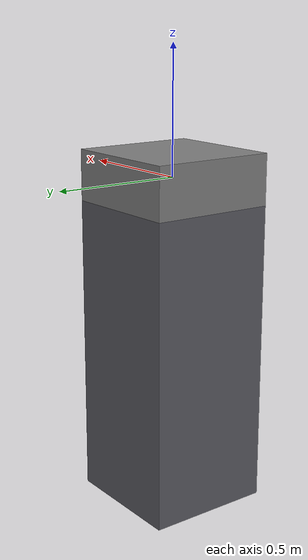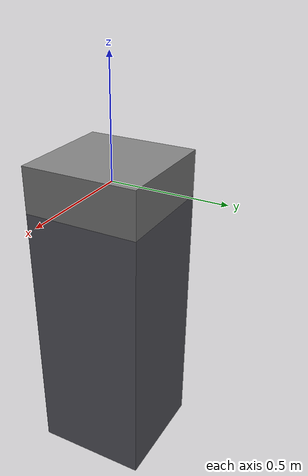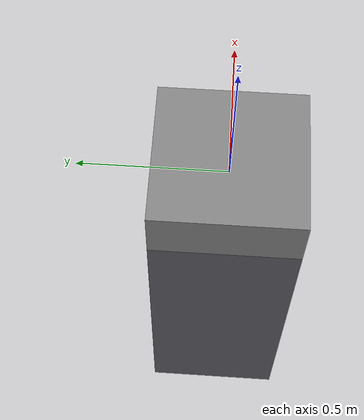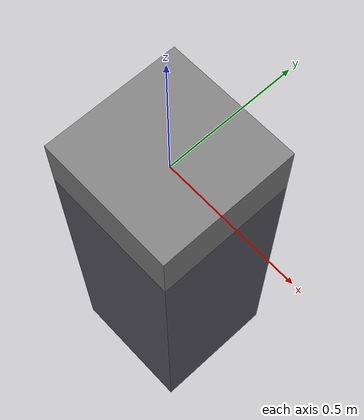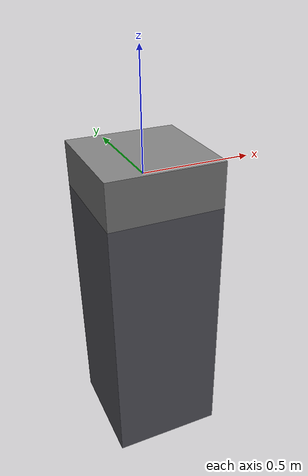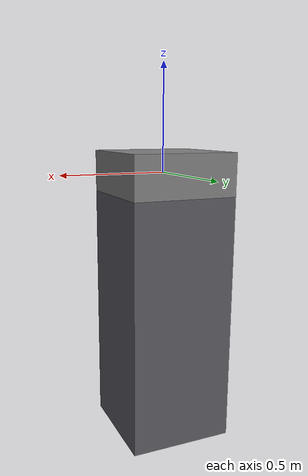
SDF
<?xml version="1.0"?>
<sdf version="1.6">
  <model name="sensor_rig">
    <static>true</static>
    <link name="body">
      <pose>0 0 -0.7 0 0 0</pose>
      <visual name="v"><geometry><box><size>0.5 0.5 1.2</size></box></geometry><material><ambient>0.35 0.35 0.38 1</ambient><diffuse>0.35 0.35 0.38 1</diffuse></material></visual>
      <collision name="c"><geometry><box><size>0.5 0.5 1.2</size></box></geometry></collision>
    </link>
    <link name="base">
      <pose>0 0 0 0 0 0</pose>
      <visual name="v"><geometry><box><size>0.5 0.5 0.2</size></box></geometry><material><ambient>0.5 0.5 0.5 1</ambient><diffuse>0.5 0.5 0.5 1</diffuse></material></visual>
      <collision name="c"><geometry><box><size>0.5 0.5 0.2</size></box></geometry></collision>
    </link>
    <link name="lidar">
      <pose>0 0 0.4 0 0 0</pose>
      <sensor name="lidar" type="ray">
        <always_on>true</always_on><update_rate>10</update_rate>
        <ray>
          <scan><horizontal><samples>360</samples><min_angle>-3.1416</min_angle><max_angle>3.1416</max_angle></horizontal><vertical><samples>16</samples><min_angle>-0.26</min_angle><max_angle>0.26</max_angle></vertical></scan>
          <range><min>0.05</min><max>15.0</max><resolution>0.01</resolution></range>
        </ray>
        <plugin name="gazebo_ros_ray_sensor" filename="libgazebo_ros_ray_sensor.so">
          <ros><remapping>~/out:=/livox/lidar/pointcloud</remapping></ros>
          <output_type>sensor_msgs/PointCloud2</output_type>
          <frame_name>livox_frame</frame_name>
        </plugin>
      </sensor>
    </link>
    <link name="cam_front">
      <pose>0 0 0.4 0 0 0</pose>
      <sensor name="cam_front_s" type="camera">
        <always_on>true</always_on><update_rate>30</update_rate>
        <camera><horizontal_fov>1.1</horizontal_fov>
          <image><width>640</width><height>384</height><format>R8G8B8</format></image>
          <clip><near>0.05</near><far>30.0</far></clip></camera>
        <plugin name="gazebo_ros_camera_cam_front" filename="libgazebo_ros_camera.so">
          <ros><remapping>~/image_raw:=/camera_front/image_raw</remapping></ros>
        </plugin>
      </sensor>
    </link>
    <link name="cam_rear">
      <pose>0 0 0.4 0 0 3.1416</pose>
      <sensor name="cam_rear_s" type="camera">
        <always_on>true</always_on><update_rate>30</update_rate>
        <camera><horizontal_fov>1.1</horizontal_fov>
          <image><width>640</width><height>384</height><format>R8G8B8</format></image>
          <clip><near>0.05</near><far>30.0</far></clip></camera>
        <plugin name="gazebo_ros_camera_cam_rear" filename="libgazebo_ros_camera.so">
          <ros><remapping>~/image_raw:=/camera_rear/image_raw</remapping></ros>
        </plugin>
      </sensor>
    </link>
    <link name="imu">
      <pose>0 0 0.4 0 0 0</pose>
      <sensor name="imu_s" type="imu">
        <always_on>true</always_on><update_rate>100</update_rate>
        <plugin name="gazebo_ros_imu" filename="libgazebo_ros_imu_sensor.so">
          <ros><remapping>~/out:=/imu/data</remapping></ros>
        </plugin>
      </sensor>
    </link>
  </model>
</sdf>
